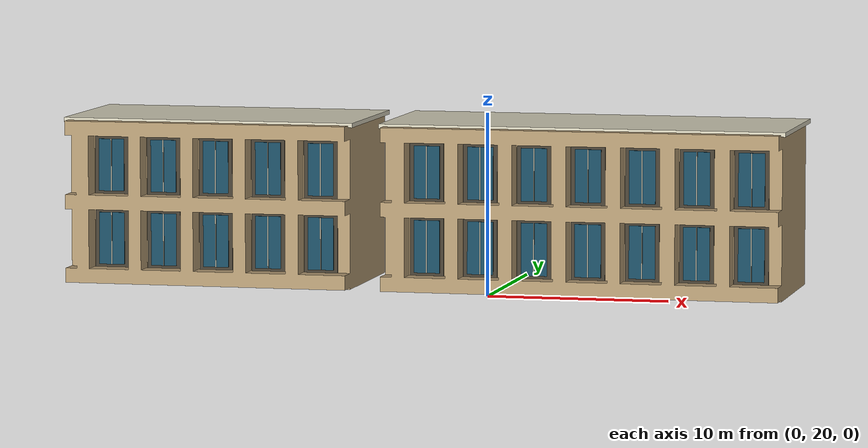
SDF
<?xml version='1.0' encoding='utf-8'?>
<sdf version="1.10">
  <model name="campus_buildings">
    <static>true</static>
    <link name="body">
      <visual name="glass">
        <geometry>
          <mesh>
            <uri>model://campus_buildings/meshes/glass.obj</uri>
          </mesh>
        </geometry>
        <material>
          <ambient>0.1 0.3 0.39 1</ambient>
          <diffuse>0.1 0.3 0.39 1</diffuse>
          <specular>.08 .08 .08 1</specular>
        </material>
      </visual>
      <visual name="ivory">
        <geometry>
          <mesh>
            <uri>model://campus_buildings/meshes/ivory.obj</uri>
          </mesh>
        </geometry>
        <material>
          <ambient>0.86 0.84 0.75 1</ambient>
          <diffuse>0.86 0.84 0.75 1</diffuse>
          <specular>.08 .08 .08 1</specular>
        </material>
      </visual>
      <visual name="recess">
        <geometry>
          <mesh>
            <uri>model://campus_buildings/meshes/recess.obj</uri>
          </mesh>
        </geometry>
        <material>
          <ambient>0.28 0.25 0.2 1</ambient>
          <diffuse>0.28 0.25 0.2 1</diffuse>
          <specular>.08 .08 .08 1</specular>
        </material>
      </visual>
      <visual name="stone">
        <geometry>
          <mesh>
            <uri>model://campus_buildings/meshes/stone.obj</uri>
          </mesh>
        </geometry>
        <material>
          <ambient>0.72 0.62 0.46 1</ambient>
          <diffuse>0.72 0.62 0.46 1</diffuse>
          <specular>.08 .08 .08 1</specular>
        </material>
      </visual>
    </link>
  </model>
</sdf>
